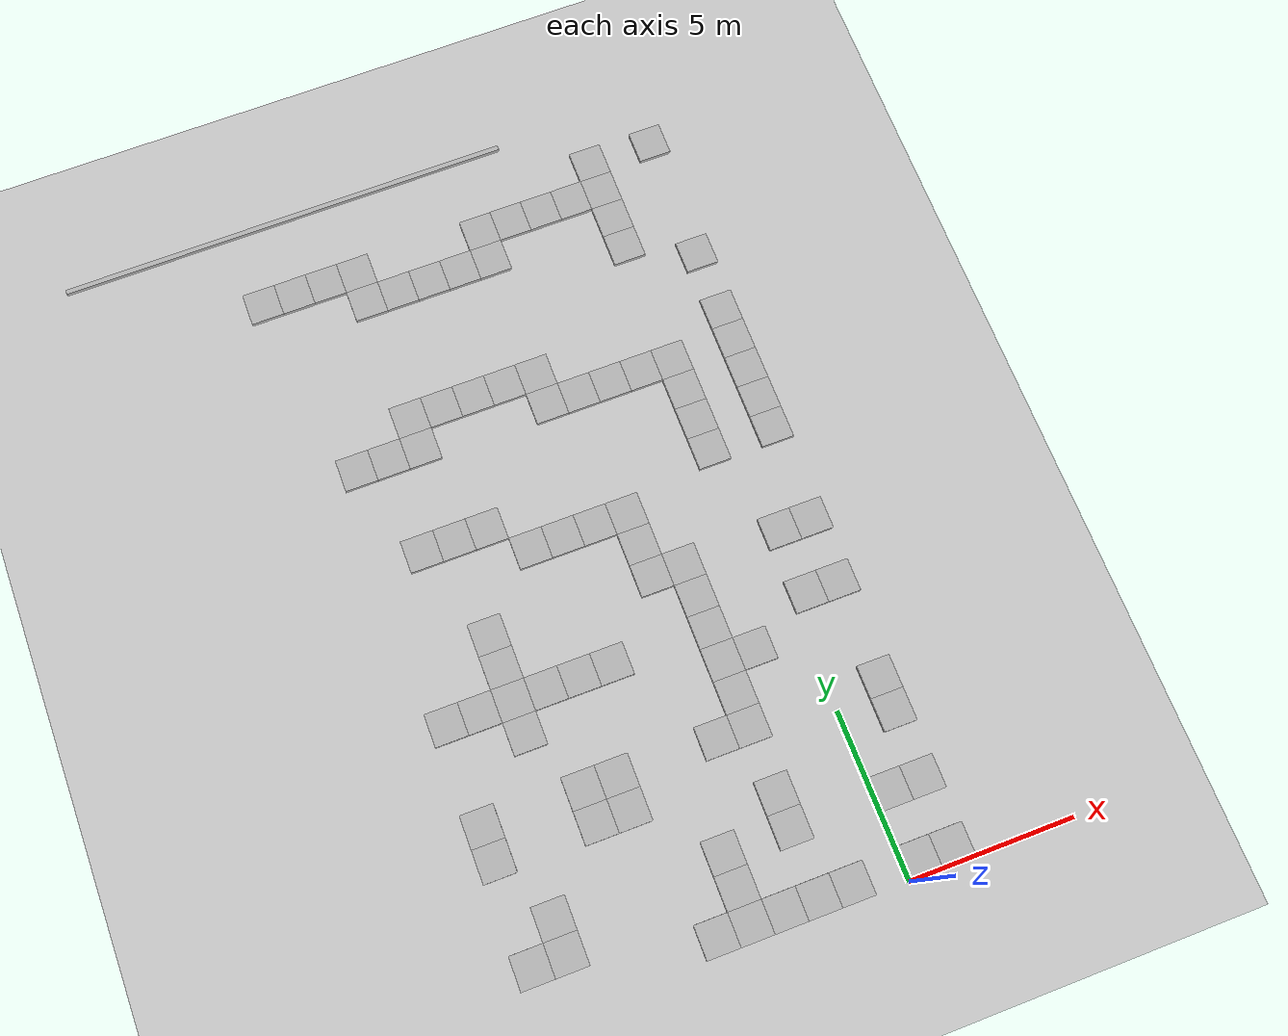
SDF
<sdf version="1.7">
 <world name="default">
  <model name="ground_plane">
   <static>1</static>
   <link name="link">
    <collision name="collision">
     <geometry><plane><normal>0 0 1</normal><size>100 100</size></plane></geometry>
     <surface>
      <contact><collide_bitmask>65535</collide_bitmask></contact>
      <friction><ode><mu>100</mu><mu2>50</mu2></ode></friction>
     </surface>
    </collision>
    <visual name="visual">
     <cast_shadows>0</cast_shadows>
     <geometry><plane><normal>0 0 1</normal><size>100 100</size></plane></geometry>
     <material>
      <script><uri>file://media/materials/scripts/gazebo.material</uri><name>Gazebo/Grey</name></script>
     </material>
    </visual>
   </link>
  </model>
  <model name="concrete_cube_1m">
   <static>1</static>
   <link name="link">
    <collision name="concrete_cube_1m">
     <pose>-0 0 0.3 0 -0 0</pose>
     <geometry><box><size>1 1 0.6</size></box></geometry>
    </collision>
    <visual name="concrete_cube_1m_visual">
     <geometry><mesh><uri>model://concrete_cube_1m/meshes/concrete_cube_1m.dae</uri></mesh></geometry>
    </visual>
   </link>
   <pose>-2.5 6.5 0 0 -0 0</pose>
  </model>
  <model name="concrete_cube_1m_0">
   <static>1</static>
   <link name="link">
    <collision name="concrete_cube_1m">
     <pose>-0 0 0.3 0 -0 0</pose>
     <geometry><box><size>1 1 0.6</size></box></geometry>
    </collision>
    <visual name="concrete_cube_1m_visual">
     <geometry><mesh><uri>model://concrete_cube_1m/meshes/concrete_cube_1m.dae</uri></mesh></geometry>
    </visual>
   </link>
   <pose>-6.5 4.5 0 0 -0 0</pose>
  </model>
  <model name="concrete_cube_1m_1">
   <static>1</static>
   <link name="link">
    <collision name="concrete_cube_1m">
     <pose>-0 0 0.3 0 -0 0</pose>
     <geometry><box><size>1 1 0.6</size></box></geometry>
    </collision>
    <visual name="concrete_cube_1m_visual">
     <geometry><mesh><uri>model://concrete_cube_1m/meshes/concrete_cube_1m.dae</uri></mesh></geometry>
    </visual>
   </link>
   <pose>-2.5 5.5 0 0 -0 0</pose>
  </model>
  <model name="concrete_cube_1m_2">
   <static>1</static>
   <link name="link">
    <collision name="concrete_cube_1m">
     <pose>-0 0 0.3 0 -0 0</pose>
     <geometry><box><size>1 1 0.6</size></box></geometry>
    </collision>
    <visual name="concrete_cube_1m_visual">
     <geometry><mesh><uri>model://concrete_cube_1m/meshes/concrete_cube_1m.dae</uri></mesh></geometry>
    </visual>
   </link>
   <pose>-1.5 0.5 0 0 -0 0</pose>
  </model>
  <model name="concrete_cube_1m_3">
   <static>1</static>
   <link name="link">
    <collision name="concrete_cube_1m">
     <pose>-0 0 0.3 0 -0 0</pose>
     <geometry><box><size>1 1 0.6</size></box></geometry>
    </collision>
    <visual name="concrete_cube_1m_visual">
     <geometry><mesh><uri>model://concrete_cube_1m/meshes/concrete_cube_1m.dae</uri></mesh></geometry>
    </visual>
   </link>
   <pose>-4.5 0.5 0 0 -0 0</pose>
  </model>
  <model name="concrete_cube_1m_27">
   <static>1</static>
   <link name="link">
    <collision name="concrete_cube_1m">
     <pose>-0 0 0.3 0 -0 0</pose>
     <geometry><box><size>1 1 0.6</size></box></geometry>
    </collision>
    <visual name="concrete_cube_1m_visual">
     <geometry><mesh><uri>model://concrete_cube_1m/meshes/concrete_cube_1m.dae</uri></mesh></geometry>
    </visual>
   </link>
   <pose>1.5 2.5 0 0 -0 0</pose>
  </model>
  <model name="concrete_cube_1m_28">
   <static>1</static>
   <link name="link">
    <collision name="concrete_cube_1m">
     <pose>-0 0 0.3 0 -0 0</pose>
     <geometry><box><size>1 1 0.6</size></box></geometry>
    </collision>
    <visual name="concrete_cube_1m_visual">
     <geometry><mesh><uri>model://concrete_cube_1m/meshes/concrete_cube_1m.dae</uri></mesh></geometry>
    </visual>
   </link>
   <pose>0.5 2.5 0 0 -0 0</pose>
  </model>
  <model name="concrete_cube_1m_29">
   <static>1</static>
   <link name="link">
    <collision name="concrete_cube_1m">
     <pose>-0 0 0.3 0 -0 0</pose>
     <geometry><box><size>1 1 0.6</size></box></geometry>
    </collision>
    <visual name="concrete_cube_1m_visual">
     <geometry><mesh><uri>model://concrete_cube_1m/meshes/concrete_cube_1m.dae</uri></mesh></geometry>
    </visual>
   </link>
   <pose>1.5 4.5 0 0 -0 0</pose>
  </model>
  <model name="concrete_cube_1m_37">
   <static>1</static>
   <link name="link">
    <collision name="concrete_cube_1m">
     <pose>-0 0 0.3 0 -0 0</pose>
     <geometry><box><size>1 1 0.6</size></box></geometry>
    </collision>
    <visual name="concrete_cube_1m_visual">
     <geometry><mesh><uri>model://concrete_cube_1m/meshes/concrete_cube_1m.dae</uri></mesh></geometry>
    </visual>
   </link>
   <pose>1.5 8.5 0 0 -0 0</pose>
  </model>
  <model name="concrete_cube_1m_38">
   <static>1</static>
   <link name="link">
    <collision name="concrete_cube_1m">
     <pose>-0 0 0.3 0 -0 0</pose>
     <geometry><box><size>1 1 0.6</size></box></geometry>
    </collision>
    <visual name="concrete_cube_1m_visual">
     <geometry><mesh><uri>model://concrete_cube_1m/meshes/concrete_cube_1m.dae</uri></mesh></geometry>
    </visual>
   </link>
   <pose>0.5 8.5 0 0 -0 0</pose>
  </model>
  <model name="concrete_cube_1m_40">
   <static>1</static>
   <link name="link">
    <collision name="concrete_cube_1m">
     <pose>-0 0 0.3 0 -0 0</pose>
     <geometry><box><size>1 1 0.6</size></box></geometry>
    </collision>
    <visual name="concrete_cube_1m_visual">
     <geometry><mesh><uri>model://concrete_cube_1m/meshes/concrete_cube_1m.dae</uri></mesh></geometry>
    </visual>
   </link>
   <pose>1.5 5.5 0 0 -0 0</pose>
  </model>
  <model name="concrete_cube_1m_43">
   <static>1</static>
   <link name="link">
    <collision name="concrete_cube_1m">
     <pose>-0 0 0.3 0 -0 0</pose>
     <geometry><box><size>1 1 0.6</size></box></geometry>
    </collision>
    <visual name="concrete_cube_1m_visual">
     <geometry><mesh><uri>model://concrete_cube_1m/meshes/concrete_cube_1m.dae</uri></mesh></geometry>
    </visual>
   </link>
   <pose>-3.5 5.5 0 0 -0 0</pose>
  </model>
  <model name="concrete_cube_1m_44">
   <static>1</static>
   <link name="link">
    <collision name="concrete_cube_1m">
     <pose>-0 0 0.3 0 -0 0</pose>
     <geometry><box><size>1 1 0.6</size></box></geometry>
    </collision>
    <visual name="concrete_cube_1m_visual">
     <geometry><mesh><uri>model://concrete_cube_1m/meshes/concrete_cube_1m.dae</uri></mesh></geometry>
    </visual>
   </link>
   <pose>-2.5 7.5 0 0 -0 0</pose>
  </model>
  <model name="concrete_cube_1m_45">
   <static>1</static>
   <link name="link">
    <collision name="concrete_cube_1m">
     <pose>-0 0 0.3 0 -0 0</pose>
     <geometry><box><size>1 1 0.6</size></box></geometry>
    </collision>
    <visual name="concrete_cube_1m_visual">
     <geometry><mesh><uri>model://concrete_cube_1m/meshes/concrete_cube_1m.dae</uri></mesh></geometry>
    </visual>
   </link>
   <pose>-2.5 0.5 0 0 -0 0</pose>
  </model>
  <model name="concrete_cube_1m_46">
   <static>1</static>
   <link name="link">
    <collision name="concrete_cube_1m">
     <pose>-0 0 0.3 0 -0 0</pose>
     <geometry><box><size>1 1 0.6</size></box></geometry>
    </collision>
    <visual name="concrete_cube_1m_visual">
     <geometry><mesh><uri>model://concrete_cube_1m/meshes/concrete_cube_1m.dae</uri></mesh></geometry>
    </visual>
   </link>
   <pose>-3.5 0.5 0 0 -0 0</pose>
  </model>
  <model name="concrete_cube_1m_47">
   <static>1</static>
   <link name="link">
    <collision name="concrete_cube_1m">
     <pose>-0 0 0.3 0 -0 0</pose>
     <geometry><box><size>1 1 0.6</size></box></geometry>
    </collision>
    <visual name="concrete_cube_1m_visual">
     <geometry><mesh><uri>model://concrete_cube_1m/meshes/concrete_cube_1m.dae</uri></mesh></geometry>
    </visual>
   </link>
   <pose>-4.5 1.5 0 0 -0 0</pose>
  </model>
  <model name="concrete_cube_1m_48">
   <static>1</static>
   <link name="link">
    <collision name="concrete_cube_1m">
     <pose>-0 0 0.3 0 -0 0</pose>
     <geometry><box><size>1 1 0.6</size></box></geometry>
    </collision>
    <visual name="concrete_cube_1m_visual">
     <geometry><mesh><uri>model://concrete_cube_1m/meshes/concrete_cube_1m.dae</uri></mesh></geometry>
    </visual>
   </link>
   <pose>-4.5 2.5 0 0 -0 0</pose>
  </model>
  <model name="concrete_cube_1m_49">
   <static>1</static>
   <link name="link">
    <collision name="concrete_cube_1m">
     <pose>-0 0 0.3 0 -0 0</pose>
     <geometry><box><size>1 1 0.6</size></box></geometry>
    </collision>
    <visual name="concrete_cube_1m_visual">
     <geometry><mesh><uri>model://concrete_cube_1m/meshes/concrete_cube_1m.dae</uri></mesh></geometry>
    </visual>
   </link>
   <pose>-5.5 0.5 0 0 -0 0</pose>
  </model>
  <model name="concrete_cube_1m_51">
   <static>1</static>
   <link name="link">
    <collision name="concrete_cube_1m">
     <pose>-0 0 0.3 0 -0 0</pose>
     <geometry><box><size>1 1 0.6</size></box></geometry>
    </collision>
    <visual name="concrete_cube_1m_visual">
     <geometry><mesh><uri>model://concrete_cube_1m/meshes/concrete_cube_1m.dae</uri></mesh></geometry>
    </visual>
   </link>
   <pose>-6.5 5.5 0 0 -0 0</pose>
  </model>
  <model name="concrete_cube_1m_52">
   <static>1</static>
   <link name="link">
    <collision name="concrete_cube_1m">
     <pose>-0 0 0.3 0 -0 0</pose>
     <geometry><box><size>1 1 0.6</size></box></geometry>
    </collision>
    <visual name="concrete_cube_1m_visual">
     <geometry><mesh><uri>model://concrete_cube_1m/meshes/concrete_cube_1m.dae</uri></mesh></geometry>
    </visual>
   </link>
   <pose>-7.5 4.5 0 0 -0 0</pose>
  </model>
  <model name="concrete_cube_1m_53">
   <static>1</static>
   <link name="link">
    <collision name="concrete_cube_1m">
     <pose>-0 0 0.3 0 -0 0</pose>
     <geometry><box><size>1 1 0.6</size></box></geometry>
    </collision>
    <visual name="concrete_cube_1m_visual">
     <geometry><mesh><uri>model://concrete_cube_1m/meshes/concrete_cube_1m.dae</uri></mesh></geometry>
    </visual>
   </link>
   <pose>-7.5 5.5 0 0 -0 0</pose>
  </model>
  <model name="concrete_cube_1m_54">
   <static>1</static>
   <link name="link">
    <collision name="concrete_cube_1m">
     <pose>-0 0 0.3 0 -0 0</pose>
     <geometry><box><size>1 1 0.6</size></box></geometry>
    </collision>
    <visual name="concrete_cube_1m_visual">
     <geometry><mesh><uri>model://concrete_cube_1m/meshes/concrete_cube_1m.dae</uri></mesh></geometry>
    </visual>
   </link>
   <pose>-8.5 8.5 0 0 -0 0</pose>
  </model>
  <model name="concrete_cube_1m_55">
   <static>1</static>
   <link name="link">
    <collision name="concrete_cube_1m">
     <pose>-0 0 0.3 0 -0 0</pose>
     <geometry><box><size>1 1 0.6</size></box></geometry>
    </collision>
    <visual name="concrete_cube_1m_visual">
     <geometry><mesh><uri>model://concrete_cube_1m/meshes/concrete_cube_1m.dae</uri></mesh></geometry>
    </visual>
   </link>
   <pose>-8.5 7.5 0 0 -0 0</pose>
  </model>
  <model name="concrete_cube_1m_56">
   <static>1</static>
   <link name="link">
    <collision name="concrete_cube_1m">
     <pose>-0 0 0.3 0 -0 0</pose>
     <geometry><box><size>1 1 0.6</size></box></geometry>
    </collision>
    <visual name="concrete_cube_1m_visual">
     <geometry><mesh><uri>model://concrete_cube_1m/meshes/concrete_cube_1m.dae</uri></mesh></geometry>
    </visual>
   </link>
   <pose>-7.5 8.5 0 0 -0 0</pose>
  </model>
  <model name="concrete_cube_1m_57">
   <static>1</static>
   <link name="link">
    <collision name="concrete_cube_1m">
     <pose>-0 0 0.3 0 -0 0</pose>
     <geometry><box><size>1 1 0.6</size></box></geometry>
    </collision>
    <visual name="concrete_cube_1m_visual">
     <geometry><mesh><uri>model://concrete_cube_1m/meshes/concrete_cube_1m.dae</uri></mesh></geometry>
    </visual>
   </link>
   <pose>-6.5 8.5 0 0 -0 0</pose>
  </model>
  <model name="concrete_cube_1m_58">
   <static>1</static>
   <link name="link">
    <collision name="concrete_cube_1m">
     <pose>-0 0 0.3 0 -0 0</pose>
     <geometry><box><size>1 1 0.6</size></box></geometry>
    </collision>
    <visual name="concrete_cube_1m_visual">
     <geometry><mesh><uri>model://concrete_cube_1m/meshes/concrete_cube_1m.dae</uri></mesh></geometry>
    </visual>
   </link>
   <pose>-5.5 8.5 0 0 -0 0</pose>
  </model>
  <model name="concrete_cube_1m_59">
   <static>1</static>
   <link name="link">
    <collision name="concrete_cube_1m">
     <pose>-0 0 0.3 0 -0 0</pose>
     <geometry><box><size>1 1 0.6</size></box></geometry>
    </collision>
    <visual name="concrete_cube_1m_visual">
     <geometry><mesh><uri>model://concrete_cube_1m/meshes/concrete_cube_1m.dae</uri></mesh></geometry>
    </visual>
   </link>
   <pose>-1.5 7.5 0 0 -0 0</pose>
  </model>
  <model name="concrete_cube_1m_60">
   <static>1</static>
   <link name="link">
    <collision name="concrete_cube_1m">
     <pose>-0 0 0.3 0 -0 0</pose>
     <geometry><box><size>1 1 0.6</size></box></geometry>
    </collision>
    <visual name="concrete_cube_1m_visual">
     <geometry><mesh><uri>model://concrete_cube_1m/meshes/concrete_cube_1m.dae</uri></mesh></geometry>
    </visual>
   </link>
   <pose>-9.5 1.5 0 0 -0 0</pose>
  </model>
  <model name="concrete_cube_1m_61">
   <static>1</static>
   <link name="link">
    <collision name="concrete_cube_1m">
     <pose>-0 0 0.3 0 -0 0</pose>
     <geometry><box><size>1 1 0.6</size></box></geometry>
    </collision>
    <visual name="concrete_cube_1m_visual">
     <geometry><mesh><uri>model://concrete_cube_1m/meshes/concrete_cube_1m.dae</uri></mesh></geometry>
    </visual>
   </link>
   <pose>-9.5 2.5 0 0 -0 0</pose>
  </model>
  <model name="concrete_cube_1m_63">
   <static>1</static>
   <link name="link">
    <collision name="concrete_cube_1m">
     <pose>-0 0 0.3 0 -0 0</pose>
     <geometry><box><size>1 1 0.6</size></box></geometry>
    </collision>
    <visual name="concrete_cube_1m_visual">
     <geometry><mesh><uri>model://concrete_cube_1m/meshes/concrete_cube_1m.dae</uri></mesh></geometry>
    </visual>
   </link>
   <pose>-2.5 3.5 0 0 -0 0</pose>
  </model>
  <model name="concrete_cube_1m_132">
   <static>1</static>
   <link name="link">
    <collision name="concrete_cube_1m">
     <pose>-0 0 0.3 0 -0 0</pose>
     <geometry><box><size>1 1 0.6</size></box></geometry>
    </collision>
    <visual name="concrete_cube_1m_visual">
     <geometry><mesh><uri>model://concrete_cube_1m/meshes/concrete_cube_1m.dae</uri></mesh></geometry>
    </visual>
   </link>
   <pose>1.5 10.5 0 0 -0 0</pose>
  </model>
  <model name="concrete_cube_1m_133">
   <static>1</static>
   <link name="link">
    <collision name="concrete_cube_1m">
     <pose>-0 0 0.3 0 -0 0</pose>
     <geometry><box><size>1 1 0.6</size></box></geometry>
    </collision>
    <visual name="concrete_cube_1m_visual">
     <geometry><mesh><uri>model://concrete_cube_1m/meshes/concrete_cube_1m.dae</uri></mesh></geometry>
    </visual>
   </link>
   <pose>0.5 10.5 0 0 -0 0</pose>
  </model>
  <model name="concrete_cube_1m_145">
   <static>1</static>
   <link name="link">
    <collision name="concrete_cube_1m">
     <pose>-0 0 0.3 0 -0 0</pose>
     <geometry><box><size>1 1 0.6</size></box></geometry>
    </collision>
    <visual name="concrete_cube_1m_visual">
     <geometry><mesh><uri>model://concrete_cube_1m/meshes/concrete_cube_1m.dae</uri></mesh></geometry>
    </visual>
   </link>
   <pose>1.5 0.5 0 0 -0 0</pose>
  </model>
  <model name="concrete_cube_1m_146">
   <static>1</static>
   <link name="link">
    <collision name="concrete_cube_1m">
     <pose>-0 0 0.3 0 -0 0</pose>
     <geometry><box><size>1 1 0.6</size></box></geometry>
    </collision>
    <visual name="concrete_cube_1m_visual">
     <geometry><mesh><uri>model://concrete_cube_1m/meshes/concrete_cube_1m.dae</uri></mesh></geometry>
    </visual>
   </link>
   <pose>0.5 0.5 0 0 -0 0</pose>
  </model>
  <model name="concrete_cube_1m_151">
   <static>1</static>
   <link name="link">
    <collision name="concrete_cube_1m">
     <pose>-0 0 0.3 0 -0 0</pose>
     <geometry><box><size>1 1 0.6</size></box></geometry>
    </collision>
    <visual name="concrete_cube_1m_visual">
     <geometry><mesh><uri>model://concrete_cube_1m/meshes/concrete_cube_1m.dae</uri></mesh></geometry>
    </visual>
   </link>
   <pose>1.5 13.5 0 0 -0 0</pose>
  </model>
  <model name="concrete_cube_1m_152">
   <static>1</static>
   <link name="link">
    <collision name="concrete_cube_1m">
     <pose>-0 0 0.3 0 -0 0</pose>
     <geometry><box><size>1 1 0.6</size></box></geometry>
    </collision>
    <visual name="concrete_cube_1m_visual">
     <geometry><mesh><uri>model://concrete_cube_1m/meshes/concrete_cube_1m.dae</uri></mesh></geometry>
    </visual>
   </link>
   <pose>-10.5 1.5 0 0 -0 0</pose>
  </model>
  <model name="concrete_cube_1m_156">
   <static>1</static>
   <link name="link">
    <collision name="concrete_cube_1m">
     <pose>-0 0 0.3 0 -0 0</pose>
     <geometry><box><size>1 1 0.6</size></box></geometry>
    </collision>
    <visual name="concrete_cube_1m_visual">
     <geometry><mesh><uri>model://concrete_cube_1m/meshes/concrete_cube_1m.dae</uri></mesh></geometry>
    </visual>
   </link>
   <pose>-8.5 9.5 0 0 -0 0</pose>
  </model>
  <model name="concrete_cube_1m_157">
   <static>1</static>
   <link name="link">
    <collision name="concrete_cube_1m">
     <pose>-0 0 0.3 0 -0 0</pose>
     <geometry><box><size>1 1 0.6</size></box></geometry>
    </collision>
    <visual name="concrete_cube_1m_visual">
     <geometry><mesh><uri>model://concrete_cube_1m/meshes/concrete_cube_1m.dae</uri></mesh></geometry>
    </visual>
   </link>
   <pose>-9.5 8.5 0 0 -0 0</pose>
  </model>
  <model name="concrete_cube_1m_158">
   <static>1</static>
   <link name="link">
    <collision name="concrete_cube_1m">
     <pose>-0 0 0.3 0 -0 0</pose>
     <geometry><box><size>1 1 0.6</size></box></geometry>
    </collision>
    <visual name="concrete_cube_1m_visual">
     <geometry><mesh><uri>model://concrete_cube_1m/meshes/concrete_cube_1m.dae</uri></mesh></geometry>
    </visual>
   </link>
   <pose>-10.5 8.5 0 0 -0 0</pose>
  </model>
  <model name="concrete_cube_1m_160">
   <static>1</static>
   <link name="link">
    <collision name="concrete_cube_1m">
     <pose>-0 0 0.3 0 -0 0</pose>
     <geometry><box><size>1 1 0.6</size></box></geometry>
    </collision>
    <visual name="concrete_cube_1m_visual">
     <geometry><mesh><uri>model://concrete_cube_1m/meshes/concrete_cube_1m.dae</uri></mesh></geometry>
    </visual>
   </link>
   <pose>-2.5 8.5 0 0 -0 0</pose>
  </model>
  <model name="concrete_cube_1m_161">
   <static>1</static>
   <link name="link">
    <collision name="concrete_cube_1m">
     <pose>-0 0 0.3 0 -0 0</pose>
     <geometry><box><size>1 1 0.6</size></box></geometry>
    </collision>
    <visual name="concrete_cube_1m_visual">
     <geometry><mesh><uri>model://concrete_cube_1m/meshes/concrete_cube_1m.dae</uri></mesh></geometry>
    </visual>
   </link>
   <pose>-2.5 9.5 0 0 -0 0</pose>
  </model>
  <model name="concrete_cube_1m_162">
   <static>1</static>
   <link name="link">
    <collision name="concrete_cube_1m">
     <pose>-0 0 0.3 0 -0 0</pose>
     <geometry><box><size>1 1 0.6</size></box></geometry>
    </collision>
    <visual name="concrete_cube_1m_visual">
     <geometry><mesh><uri>model://concrete_cube_1m/meshes/concrete_cube_1m.dae</uri></mesh></geometry>
    </visual>
   </link>
   <pose>-2.5 10.5 0 0 -0 0</pose>
  </model>
  <model name="concrete_cube_1m_163">
   <static>1</static>
   <link name="link">
    <collision name="concrete_cube_1m">
     <pose>-0 0 0.3 0 -0 0</pose>
     <geometry><box><size>1 1 0.6</size></box></geometry>
    </collision>
    <visual name="concrete_cube_1m_visual">
     <geometry><mesh><uri>model://concrete_cube_1m/meshes/concrete_cube_1m.dae</uri></mesh></geometry>
    </visual>
   </link>
   <pose>-3.5 10.5 0 0 -0 0</pose>
  </model>
  <model name="concrete_cube_1m_164">
   <static>1</static>
   <link name="link">
    <collision name="concrete_cube_1m">
     <pose>-0 0 0.3 0 -0 0</pose>
     <geometry><box><size>1 1 0.6</size></box></geometry>
    </collision>
    <visual name="concrete_cube_1m_visual">
     <geometry><mesh><uri>model://concrete_cube_1m/meshes/concrete_cube_1m.dae</uri></mesh></geometry>
    </visual>
   </link>
   <pose>-3.5 11.5 0 0 -0 0</pose>
  </model>
  <model name="concrete_cube_1m_165">
   <static>1</static>
   <link name="link">
    <collision name="concrete_cube_1m">
     <pose>-0 0 0.3 0 -0 0</pose>
     <geometry><box><size>1 1 0.6</size></box></geometry>
    </collision>
    <visual name="concrete_cube_1m_visual">
     <geometry><mesh><uri>model://concrete_cube_1m/meshes/concrete_cube_1m.dae</uri></mesh></geometry>
    </visual>
   </link>
   <pose>-3.5 12.5 0 0 -0 0</pose>
  </model>
  <model name="concrete_cube_1m_166">
   <static>1</static>
   <link name="link">
    <collision name="concrete_cube_1m">
     <pose>-0 0 0.3 0 -0 0</pose>
     <geometry><box><size>1 1 0.6</size></box></geometry>
    </collision>
    <visual name="concrete_cube_1m_visual">
     <geometry><mesh><uri>model://concrete_cube_1m/meshes/concrete_cube_1m.dae</uri></mesh></geometry>
    </visual>
   </link>
   <pose>-4.5 12.5 0 0 -0 0</pose>
  </model>
  <model name="concrete_cube_1m_167">
   <static>1</static>
   <link name="link">
    <collision name="concrete_cube_1m">
     <pose>-0 0 0.3 0 -0 0</pose>
     <geometry><box><size>1 1 0.6</size></box></geometry>
    </collision>
    <visual name="concrete_cube_1m_visual">
     <geometry><mesh><uri>model://concrete_cube_1m/meshes/concrete_cube_1m.dae</uri></mesh></geometry>
    </visual>
   </link>
   <pose>-5.5 12.5 0 0 -0 0</pose>
  </model>
  <model name="concrete_cube_1m_168">
   <static>1</static>
   <link name="link">
    <collision name="concrete_cube_1m">
     <pose>-0 0 0.3 0 -0 0</pose>
     <geometry><box><size>1 1 0.6</size></box></geometry>
    </collision>
    <visual name="concrete_cube_1m_visual">
     <geometry><mesh><uri>model://concrete_cube_1m/meshes/concrete_cube_1m.dae</uri></mesh></geometry>
    </visual>
   </link>
   <pose>-6.5 12.5 0 0 -0 0</pose>
  </model>
  <model name="concrete_cube_1m_177">
   <static>1</static>
   <link name="link">
    <collision name="concrete_cube_1m">
     <pose>-0 0 0.3 0 -0 0</pose>
     <geometry><box><size>1 1 0.6</size></box></geometry>
    </collision>
    <visual name="concrete_cube_1m_visual">
     <geometry><mesh><uri>model://concrete_cube_1m/meshes/concrete_cube_1m.dae</uri></mesh></geometry>
    </visual>
   </link>
   <pose>-8.5 13.5 0 0 -0 0</pose>
  </model>
  <model name="concrete_cube_1m_178">
   <static>1</static>
   <link name="link">
    <collision name="concrete_cube_1m">
     <pose>-0 0 0.3 0 -0 0</pose>
     <geometry><box><size>1 1 0.6</size></box></geometry>
    </collision>
    <visual name="concrete_cube_1m_visual">
     <geometry><mesh><uri>model://concrete_cube_1m/meshes/concrete_cube_1m.dae</uri></mesh></geometry>
    </visual>
   </link>
   <pose>-9.5 13.5 0 0 -0 0</pose>
  </model>
  <model name="concrete_cube_1m_179">
   <static>1</static>
   <link name="link">
    <collision name="concrete_cube_1m">
     <pose>-0 0 0.3 0 -0 0</pose>
     <geometry><box><size>1 1 0.6</size></box></geometry>
    </collision>
    <visual name="concrete_cube_1m_visual">
     <geometry><mesh><uri>model://concrete_cube_1m/meshes/concrete_cube_1m.dae</uri></mesh></geometry>
    </visual>
   </link>
   <pose>-8.5 10.5 0 0 -0 0</pose>
  </model>
  <model name="concrete_cube_1m_180">
   <static>1</static>
   <link name="link">
    <collision name="concrete_cube_1m">
     <pose>-0 0 0.3 0 -0 0</pose>
     <geometry><box><size>1 1 0.6</size></box></geometry>
    </collision>
    <visual name="concrete_cube_1m_visual">
     <geometry><mesh><uri>model://concrete_cube_1m/meshes/concrete_cube_1m.dae</uri></mesh></geometry>
    </visual>
   </link>
   <pose>-2.5 2.5 0 0 -0 0</pose>
  </model>
  <model name="concrete_cube_1m_181">
   <static>1</static>
   <link name="link">
    <collision name="concrete_cube_1m">
     <pose>-0 0 0.3 0 -0 0</pose>
     <geometry><box><size>1 1 0.6</size></box></geometry>
    </collision>
    <visual name="concrete_cube_1m_visual">
     <geometry><mesh><uri>model://concrete_cube_1m/meshes/concrete_cube_1m.dae</uri></mesh></geometry>
    </visual>
   </link>
   <pose>-0.5 13.5 0 0 -0 0</pose>
  </model>
  <model name="concrete_cube_1m_182">
   <static>1</static>
   <link name="link">
    <collision name="concrete_cube_1m">
     <pose>-0 0 0.3 0 -0 0</pose>
     <geometry><box><size>1 1 0.6</size></box></geometry>
    </collision>
    <visual name="concrete_cube_1m_visual">
     <geometry><mesh><uri>model://concrete_cube_1m/meshes/concrete_cube_1m.dae</uri></mesh></geometry>
    </visual>
   </link>
   <pose>-0.5 14.5 0 0 -0 0</pose>
  </model>
  <model name="concrete_cube_1m_198">
   <static>1</static>
   <link name="link">
    <collision name="concrete_cube_1m">
     <pose>-0 0 0.3 0 -0 0</pose>
     <geometry><box><size>1 1 0.6</size></box></geometry>
    </collision>
    <visual name="concrete_cube_1m_visual">
     <geometry><mesh><uri>model://concrete_cube_1m/meshes/concrete_cube_1m.dae</uri></mesh></geometry>
    </visual>
   </link>
   <pose>-7.5 13.5 0 0 -0 0</pose>
  </model>
  <model name="concrete_barrier_14m_4_clone_0">
   <static>1</static>
   <link name="link">
    <collision name="concrete_barrier_14m_01">
     <pose>-0 0 0.3 0 -0 0</pose>
     <geometry><box><size>14 0.15 0.6</size></box></geometry>
    </collision>
    <visual name="concrete_barrier_14m_visual">
     <geometry><mesh><uri>model://concrete_barrier_14m/meshes/concrete_barrier_14m.dae</uri></mesh></geometry>
    </visual>
   </link>
   <pose>-10 25 0 0 0 -1.56953</pose>
  </model>
  <model name="concrete_cube_1m_246">
   <static>1</static>
   <link name="link">
    <collision name="concrete_cube_1m">
     <pose>-0 0 0.3 0 -0 0</pose>
     <geometry><box><size>1 1 0.6</size></box></geometry>
    </collision>
    <visual name="concrete_cube_1m_visual">
     <geometry><mesh><uri>model://concrete_cube_1m/meshes/concrete_cube_1m.dae</uri></mesh></geometry>
    </visual>
   </link>
   <pose>-0.5 15.5 0 0 -0 0</pose>
  </model>
  <model name="concrete_cube_1m_247">
   <static>1</static>
   <link name="link">
    <collision name="concrete_cube_1m">
     <pose>-0 0 0.3 0 -0 0</pose>
     <geometry><box><size>1 1 0.6</size></box></geometry>
    </collision>
    <visual name="concrete_cube_1m_visual">
     <geometry><mesh><uri>model://concrete_cube_1m/meshes/concrete_cube_1m.dae</uri></mesh></geometry>
    </visual>
   </link>
   <pose>-0.5 16.5 0 0 -0 0</pose>
  </model>
  <model name="concrete_cube_1m_297">
   <static>1</static>
   <link name="link">
    <collision name="concrete_cube_1m">
     <pose>-0 0 0.3 0 -0 0</pose>
     <geometry><box><size>1 1 0.6</size></box></geometry>
    </collision>
    <visual name="concrete_cube_1m_visual">
     <geometry><mesh><uri>model://concrete_cube_1m/meshes/concrete_cube_1m.dae</uri></mesh></geometry>
    </visual>
   </link>
   <pose>1.5 14.5 0 0 -0 0</pose>
  </model>
  <model name="concrete_cube_1m_298">
   <static>1</static>
   <link name="link">
    <collision name="concrete_cube_1m">
     <pose>-0 0 0.3 0 -0 0</pose>
     <geometry><box><size>1 1 0.6</size></box></geometry>
    </collision>
    <visual name="concrete_cube_1m_visual">
     <geometry><mesh><uri>model://concrete_cube_1m/meshes/concrete_cube_1m.dae</uri></mesh></geometry>
    </visual>
   </link>
   <pose>1.5 15.5 0 0 -0 0</pose>
  </model>
  <model name="concrete_cube_1m_299">
   <static>1</static>
   <link name="link">
    <collision name="concrete_cube_1m">
     <pose>-0 0 0.3 0 -0 0</pose>
     <geometry><box><size>1 1 0.6</size></box></geometry>
    </collision>
    <visual name="concrete_cube_1m_visual">
     <geometry><mesh><uri>model://concrete_cube_1m/meshes/concrete_cube_1m.dae</uri></mesh></geometry>
    </visual>
   </link>
   <pose>1.5 16.5 0 0 -0 0</pose>
  </model>
  <model name="concrete_cube_1m_300">
   <static>1</static>
   <link name="link">
    <collision name="concrete_cube_1m">
     <pose>-0 0 0.3 0 -0 0</pose>
     <geometry><box><size>1 1 0.6</size></box></geometry>
    </collision>
    <visual name="concrete_cube_1m_visual">
     <geometry><mesh><uri>model://concrete_cube_1m/meshes/concrete_cube_1m.dae</uri></mesh></geometry>
    </visual>
   </link>
   <pose>1.5 17.5 0 0 -0 0</pose>
  </model>
  <model name="concrete_cube_1m_306">
   <static>1</static>
   <link name="link">
    <collision name="concrete_cube_1m">
     <pose>-0 0 0.3 0 -0 0</pose>
     <geometry><box><size>1 1 0.6</size></box></geometry>
    </collision>
    <visual name="concrete_cube_1m_visual">
     <geometry><mesh><uri>model://concrete_cube_1m/meshes/concrete_cube_1m.dae</uri></mesh></geometry>
    </visual>
   </link>
   <pose>-1.5 16.5 0 0 -0 0</pose>
  </model>
  <model name="concrete_cube_1m_307">
   <static>1</static>
   <link name="link">
    <collision name="concrete_cube_1m">
     <pose>-0 0 0.3 0 -0 0</pose>
     <geometry><box><size>1 1 0.6</size></box></geometry>
    </collision>
    <visual name="concrete_cube_1m_visual">
     <geometry><mesh><uri>model://concrete_cube_1m/meshes/concrete_cube_1m.dae</uri></mesh></geometry>
    </visual>
   </link>
   <pose>-2.5 16.5 0 0 -0 0</pose>
  </model>
  <model name="concrete_cube_1m_308">
   <static>1</static>
   <link name="link">
    <collision name="concrete_cube_1m">
     <pose>-0 0 0.3 0 -0 0</pose>
     <geometry><box><size>1 1 0.6</size></box></geometry>
    </collision>
    <visual name="concrete_cube_1m_visual">
     <geometry><mesh><uri>model://concrete_cube_1m/meshes/concrete_cube_1m.dae</uri></mesh></geometry>
    </visual>
   </link>
   <pose>-3.5 16.5 0 0 -0 0</pose>
  </model>
  <model name="concrete_cube_1m_309">
   <static>1</static>
   <link name="link">
    <collision name="concrete_cube_1m">
     <pose>-0 0 0.3 0 -0 0</pose>
     <geometry><box><size>1 1 0.6</size></box></geometry>
    </collision>
    <visual name="concrete_cube_1m_visual">
     <geometry><mesh><uri>model://concrete_cube_1m/meshes/concrete_cube_1m.dae</uri></mesh></geometry>
    </visual>
   </link>
   <pose>-4.5 16.5 0 0 -0 0</pose>
  </model>
  <model name="concrete_cube_1m_310">
   <static>1</static>
   <link name="link">
    <collision name="concrete_cube_1m">
     <pose>-0 0 0.3 0 -0 0</pose>
     <geometry><box><size>1 1 0.6</size></box></geometry>
    </collision>
    <visual name="concrete_cube_1m_visual">
     <geometry><mesh><uri>model://concrete_cube_1m/meshes/concrete_cube_1m.dae</uri></mesh></geometry>
    </visual>
   </link>
   <pose>-4.5 17.5 0 0 -0 0</pose>
  </model>
  <model name="concrete_cube_1m_311">
   <static>1</static>
   <link name="link">
    <collision name="concrete_cube_1m">
     <pose>-0 0 0.3 0 -0 0</pose>
     <geometry><box><size>1 1 0.6</size></box></geometry>
    </collision>
    <visual name="concrete_cube_1m_visual">
     <geometry><mesh><uri>model://concrete_cube_1m/meshes/concrete_cube_1m.dae</uri></mesh></geometry>
    </visual>
   </link>
   <pose>-5.5 17.5 0 0 -0 0</pose>
  </model>
  <model name="concrete_cube_1m_312">
   <static>1</static>
   <link name="link">
    <collision name="concrete_cube_1m">
     <pose>-0 0 0.3 0 -0 0</pose>
     <geometry><box><size>1 1 0.6</size></box></geometry>
    </collision>
    <visual name="concrete_cube_1m_visual">
     <geometry><mesh><uri>model://concrete_cube_1m/meshes/concrete_cube_1m.dae</uri></mesh></geometry>
    </visual>
   </link>
   <pose>-6.5 17.5 0 0 -0 0</pose>
  </model>
  <model name="concrete_cube_1m_313">
   <static>1</static>
   <link name="link">
    <collision name="concrete_cube_1m">
     <pose>-0 0 0.3 0 -0 0</pose>
     <geometry><box><size>1 1 0.6</size></box></geometry>
    </collision>
    <visual name="concrete_cube_1m_visual">
     <geometry><mesh><uri>model://concrete_cube_1m/meshes/concrete_cube_1m.dae</uri></mesh></geometry>
    </visual>
   </link>
   <pose>-7.5 17.5 0 0 -0 0</pose>
  </model>
  <model name="concrete_cube_1m_314">
   <static>1</static>
   <link name="link">
    <collision name="concrete_cube_1m">
     <pose>-0 0 0.3 0 -0 0</pose>
     <geometry><box><size>1 1 0.6</size></box></geometry>
    </collision>
    <visual name="concrete_cube_1m_visual">
     <geometry><mesh><uri>model://concrete_cube_1m/meshes/concrete_cube_1m.dae</uri></mesh></geometry>
    </visual>
   </link>
   <pose>-8.5 17.5 0 0 -0 0</pose>
  </model>
  <model name="concrete_cube_1m_315">
   <static>1</static>
   <link name="link">
    <collision name="concrete_cube_1m">
     <pose>-0 0 0.3 0 -0 0</pose>
     <geometry><box><size>1 1 0.6</size></box></geometry>
    </collision>
    <visual name="concrete_cube_1m_visual">
     <geometry><mesh><uri>model://concrete_cube_1m/meshes/concrete_cube_1m.dae</uri></mesh></geometry>
    </visual>
   </link>
   <pose>-8.5 16.5 0 0 -0 0</pose>
  </model>
  <model name="concrete_cube_1m_316">
   <static>1</static>
   <link name="link">
    <collision name="concrete_cube_1m">
     <pose>-0 0 0.3 0 -0 0</pose>
     <geometry><box><size>1 1 0.6</size></box></geometry>
    </collision>
    <visual name="concrete_cube_1m_visual">
     <geometry><mesh><uri>model://concrete_cube_1m/meshes/concrete_cube_1m.dae</uri></mesh></geometry>
    </visual>
   </link>
   <pose>-9.5 16.5 0 0 -0 0</pose>
  </model>
  <model name="concrete_cube_1m_317">
   <static>1</static>
   <link name="link">
    <collision name="concrete_cube_1m">
     <pose>-0 0 0.3 0 -0 0</pose>
     <geometry><box><size>1 1 0.6</size></box></geometry>
    </collision>
    <visual name="concrete_cube_1m_visual">
     <geometry><mesh><uri>model://concrete_cube_1m/meshes/concrete_cube_1m.dae</uri></mesh></geometry>
    </visual>
   </link>
   <pose>-10.5 16.5 0 0 -0 0</pose>
  </model>
  <model name="concrete_cube_1m_378">
   <static>1</static>
   <link name="link">
    <collision name="concrete_cube_1m">
     <pose>-0 0 0.3 0 -0 0</pose>
     <geometry><box><size>1 1 0.6</size></box></geometry>
    </collision>
    <visual name="concrete_cube_1m_visual">
     <geometry><mesh><uri>model://concrete_cube_1m/meshes/concrete_cube_1m.dae</uri></mesh></geometry>
    </visual>
   </link>
   <pose>-10.5 5.5 0 0 -0 0</pose>
  </model>
  <model name="concrete_cube_1m_379">
   <static>1</static>
   <link name="link">
    <collision name="concrete_cube_1m">
     <pose>-0 0 0.3 0 -0 0</pose>
     <geometry><box><size>1 1 0.6</size></box></geometry>
    </collision>
    <visual name="concrete_cube_1m_visual">
     <geometry><mesh><uri>model://concrete_cube_1m/meshes/concrete_cube_1m.dae</uri></mesh></geometry>
    </visual>
   </link>
   <pose>-10.5 4.5 0 0 -0 0</pose>
  </model>
  <model name="concrete_cube_1m_580">
   <static>1</static>
   <link name="link">
    <collision name="concrete_cube_1m">
     <pose>-0 0 0.3 0 -0 0</pose>
     <geometry><box><size>1 1 0.6</size></box></geometry>
    </collision>
    <visual name="concrete_cube_1m_visual">
     <geometry><mesh><uri>model://concrete_cube_1m/meshes/concrete_cube_1m.dae</uri></mesh></geometry>
    </visual>
   </link>
   <pose>-11.5 22.5 0 0 -0 0</pose>
  </model>
  <model name="concrete_cube_1m_581">
   <static>1</static>
   <link name="link">
    <collision name="concrete_cube_1m">
     <pose>-0 0 0.3 0 -0 0</pose>
     <geometry><box><size>1 1 0.6</size></box></geometry>
    </collision>
    <visual name="concrete_cube_1m_visual">
     <geometry><mesh><uri>model://concrete_cube_1m/meshes/concrete_cube_1m.dae</uri></mesh></geometry>
    </visual>
   </link>
   <pose>-10.5 22.5 0 0 -0 0</pose>
  </model>
  <model name="concrete_cube_1m_582">
   <static>1</static>
   <link name="link">
    <collision name="concrete_cube_1m">
     <pose>-0 0 0.3 0 -0 0</pose>
     <geometry><box><size>1 1 0.6</size></box></geometry>
    </collision>
    <visual name="concrete_cube_1m_visual">
     <geometry><mesh><uri>model://concrete_cube_1m/meshes/concrete_cube_1m.dae</uri></mesh></geometry>
    </visual>
   </link>
   <pose>-9.5 22.5 0 0 -0 0</pose>
  </model>
  <model name="concrete_cube_1m_583">
   <static>1</static>
   <link name="link">
    <collision name="concrete_cube_1m">
     <pose>-0 0 0.3 0 -0 0</pose>
     <geometry><box><size>1 1 0.6</size></box></geometry>
    </collision>
    <visual name="concrete_cube_1m_visual">
     <geometry><mesh><uri>model://concrete_cube_1m/meshes/concrete_cube_1m.dae</uri></mesh></geometry>
    </visual>
   </link>
   <pose>-8.5 22.5 0 0 -0 0</pose>
  </model>
  <model name="concrete_cube_1m_584">
   <static>1</static>
   <link name="link">
    <collision name="concrete_cube_1m">
     <pose>-0 0 0.3 0 -0 0</pose>
     <geometry><box><size>1 1 0.6</size></box></geometry>
    </collision>
    <visual name="concrete_cube_1m_visual">
     <geometry><mesh><uri>model://concrete_cube_1m/meshes/concrete_cube_1m.dae</uri></mesh></geometry>
    </visual>
   </link>
   <pose>-8.5 21.5 0 0 -0 0</pose>
  </model>
  <model name="concrete_cube_1m_585">
   <static>1</static>
   <link name="link">
    <collision name="concrete_cube_1m">
     <pose>-0 0 0.3 0 -0 0</pose>
     <geometry><box><size>1 1 0.6</size></box></geometry>
    </collision>
    <visual name="concrete_cube_1m_visual">
     <geometry><mesh><uri>model://concrete_cube_1m/meshes/concrete_cube_1m.dae</uri></mesh></geometry>
    </visual>
   </link>
   <pose>-7.5 21.5 0 0 -0 0</pose>
  </model>
  <model name="concrete_cube_1m_586">
   <static>1</static>
   <link name="link">
    <collision name="concrete_cube_1m">
     <pose>-0 0 0.3 0 -0 0</pose>
     <geometry><box><size>1 1 0.6</size></box></geometry>
    </collision>
    <visual name="concrete_cube_1m_visual">
     <geometry><mesh><uri>model://concrete_cube_1m/meshes/concrete_cube_1m.dae</uri></mesh></geometry>
    </visual>
   </link>
   <pose>-6.5 21.5 0 0 -0 0</pose>
  </model>
  <model name="concrete_cube_1m_587">
   <static>1</static>
   <link name="link">
    <collision name="concrete_cube_1m">
     <pose>-0 0 0.3 0 -0 0</pose>
     <geometry><box><size>1 1 0.6</size></box></geometry>
    </collision>
    <visual name="concrete_cube_1m_visual">
     <geometry><mesh><uri>model://concrete_cube_1m/meshes/concrete_cube_1m.dae</uri></mesh></geometry>
    </visual>
   </link>
   <pose>-5.5 21.5 0 0 -0 0</pose>
  </model>
  <model name="concrete_cube_1m_588">
   <static>1</static>
   <link name="link">
    <collision name="concrete_cube_1m">
     <pose>-0 0 0.3 0 -0 0</pose>
     <geometry><box><size>1 1 0.6</size></box></geometry>
    </collision>
    <visual name="concrete_cube_1m_visual">
     <geometry><mesh><uri>model://concrete_cube_1m/meshes/concrete_cube_1m.dae</uri></mesh></geometry>
    </visual>
   </link>
   <pose>-4.5 21.5 0 0 -0 0</pose>
  </model>
  <model name="concrete_cube_1m_589">
   <static>1</static>
   <link name="link">
    <collision name="concrete_cube_1m">
     <pose>-0 0 0.3 0 -0 0</pose>
     <geometry><box><size>1 1 0.6</size></box></geometry>
    </collision>
    <visual name="concrete_cube_1m_visual">
     <geometry><mesh><uri>model://concrete_cube_1m/meshes/concrete_cube_1m.dae</uri></mesh></geometry>
    </visual>
   </link>
   <pose>-4.5 22.5 0 0 -0 0</pose>
  </model>
  <model name="concrete_cube_1m_590">
   <static>1</static>
   <link name="link">
    <collision name="concrete_cube_1m">
     <pose>-0 0 0.3 0 -0 0</pose>
     <geometry><box><size>1 1 0.6</size></box></geometry>
    </collision>
    <visual name="concrete_cube_1m_visual">
     <geometry><mesh><uri>model://concrete_cube_1m/meshes/concrete_cube_1m.dae</uri></mesh></geometry>
    </visual>
   </link>
   <pose>-3.5 22.5 0 0 -0 0</pose>
  </model>
  <model name="concrete_cube_1m_591">
   <static>1</static>
   <link name="link">
    <collision name="concrete_cube_1m">
     <pose>-0 0 0.3 0 -0 0</pose>
     <geometry><box><size>1 1 0.6</size></box></geometry>
    </collision>
    <visual name="concrete_cube_1m_visual">
     <geometry><mesh><uri>model://concrete_cube_1m/meshes/concrete_cube_1m.dae</uri></mesh></geometry>
    </visual>
   </link>
   <pose>-2.5 22.5 0 0 -0 0</pose>
  </model>
  <model name="concrete_cube_1m_592">
   <static>1</static>
   <link name="link">
    <collision name="concrete_cube_1m">
     <pose>-0 0 0.3 0 -0 0</pose>
     <geometry><box><size>1 1 0.6</size></box></geometry>
    </collision>
    <visual name="concrete_cube_1m_visual">
     <geometry><mesh><uri>model://concrete_cube_1m/meshes/concrete_cube_1m.dae</uri></mesh></geometry>
    </visual>
   </link>
   <pose>-1.5 22.5 0 0 -0 0</pose>
  </model>
  <model name="concrete_cube_1m_593">
   <static>1</static>
   <link name="link">
    <collision name="concrete_cube_1m">
     <pose>-0 0 0.3 0 -0 0</pose>
     <geometry><box><size>1 1 0.6</size></box></geometry>
    </collision>
    <visual name="concrete_cube_1m_visual">
     <geometry><mesh><uri>model://concrete_cube_1m/meshes/concrete_cube_1m.dae</uri></mesh></geometry>
    </visual>
   </link>
   <pose>-0.5 22.5 0 0 -0 0</pose>
  </model>
  <model name="concrete_cube_1m_594">
   <static>1</static>
   <link name="link">
    <collision name="concrete_cube_1m">
     <pose>-0 0 0.3 0 -0 0</pose>
     <geometry><box><size>1 1 0.6</size></box></geometry>
    </collision>
    <visual name="concrete_cube_1m_visual">
     <geometry><mesh><uri>model://concrete_cube_1m/meshes/concrete_cube_1m.dae</uri></mesh></geometry>
    </visual>
   </link>
   <pose>-0.5 20.5 0 0 -0 0</pose>
  </model>
  <model name="concrete_cube_1m_595">
   <static>1</static>
   <link name="link">
    <collision name="concrete_cube_1m">
     <pose>-0 0 0.3 0 -0 0</pose>
     <geometry><box><size>1 1 0.6</size></box></geometry>
    </collision>
    <visual name="concrete_cube_1m_visual">
     <geometry><mesh><uri>model://concrete_cube_1m/meshes/concrete_cube_1m.dae</uri></mesh></geometry>
    </visual>
   </link>
   <pose>-0.5 21.5 0 0 -0 0</pose>
  </model>
  <model name="concrete_cube_1m_596">
   <static>1</static>
   <link name="link">
    <collision name="concrete_cube_1m">
     <pose>-0 0 0.3 0 -0 0</pose>
     <geometry><box><size>1 1 0.6</size></box></geometry>
    </collision>
    <visual name="concrete_cube_1m_visual">
     <geometry><mesh><uri>model://concrete_cube_1m/meshes/concrete_cube_1m.dae</uri></mesh></geometry>
    </visual>
   </link>
   <pose>-0.5 23.5 0 0 -0 0</pose>
  </model>
  <model name="concrete_cube_1m_597">
   <static>1</static>
   <link name="link">
    <collision name="concrete_cube_1m">
     <pose>-0 0 0.3 0 -0 0</pose>
     <geometry><box><size>1 1 0.6</size></box></geometry>
    </collision>
    <visual name="concrete_cube_1m_visual">
     <geometry><mesh><uri>model://concrete_cube_1m/meshes/concrete_cube_1m.dae</uri></mesh></geometry>
    </visual>
   </link>
   <pose>1.5 23.5 0 0 -0 0</pose>
  </model>
  <model name="concrete_cube_1m_622">
   <static>1</static>
   <link name="link">
    <collision name="concrete_cube_1m">
     <pose>-0 0 0.3 0 -0 0</pose>
     <geometry><box><size>1 1 0.6</size></box></geometry>
    </collision>
    <visual name="concrete_cube_1m_visual">
     <geometry><mesh><uri>model://concrete_cube_1m/meshes/concrete_cube_1m.dae</uri></mesh></geometry>
    </visual>
   </link>
   <pose>1.5 19.5 0 0 -0 0</pose>
  </model>
 </world>
</sdf>
